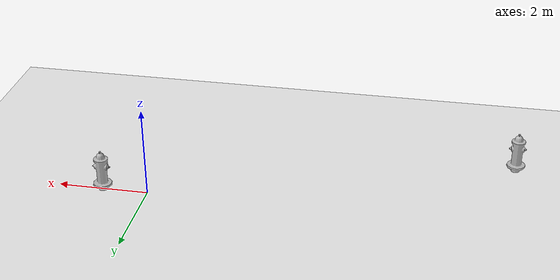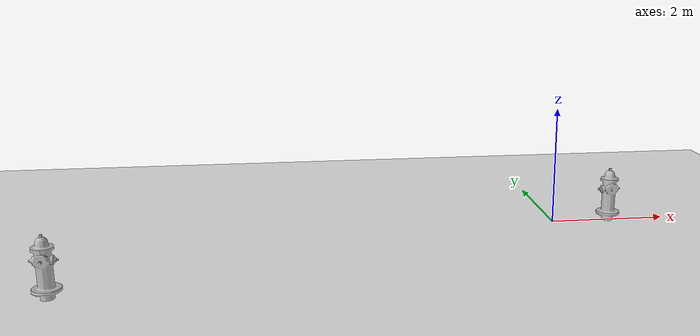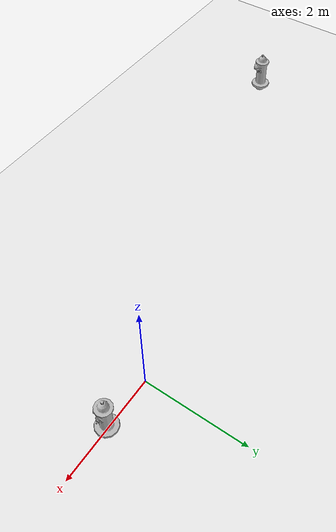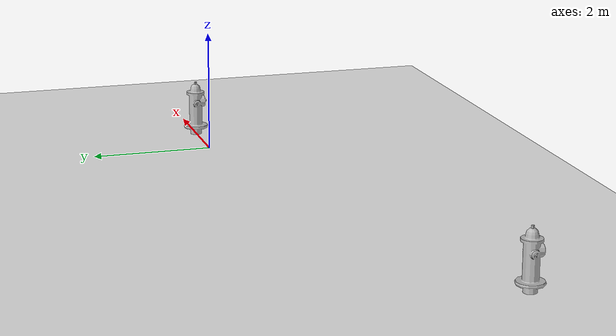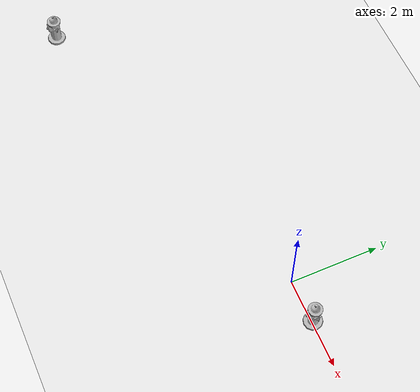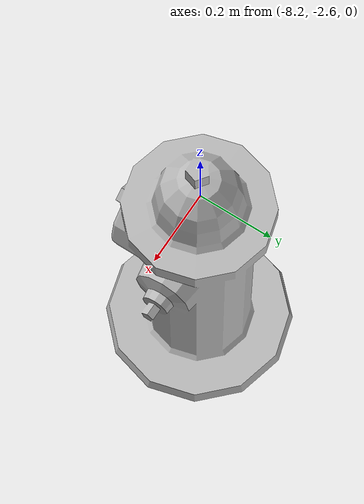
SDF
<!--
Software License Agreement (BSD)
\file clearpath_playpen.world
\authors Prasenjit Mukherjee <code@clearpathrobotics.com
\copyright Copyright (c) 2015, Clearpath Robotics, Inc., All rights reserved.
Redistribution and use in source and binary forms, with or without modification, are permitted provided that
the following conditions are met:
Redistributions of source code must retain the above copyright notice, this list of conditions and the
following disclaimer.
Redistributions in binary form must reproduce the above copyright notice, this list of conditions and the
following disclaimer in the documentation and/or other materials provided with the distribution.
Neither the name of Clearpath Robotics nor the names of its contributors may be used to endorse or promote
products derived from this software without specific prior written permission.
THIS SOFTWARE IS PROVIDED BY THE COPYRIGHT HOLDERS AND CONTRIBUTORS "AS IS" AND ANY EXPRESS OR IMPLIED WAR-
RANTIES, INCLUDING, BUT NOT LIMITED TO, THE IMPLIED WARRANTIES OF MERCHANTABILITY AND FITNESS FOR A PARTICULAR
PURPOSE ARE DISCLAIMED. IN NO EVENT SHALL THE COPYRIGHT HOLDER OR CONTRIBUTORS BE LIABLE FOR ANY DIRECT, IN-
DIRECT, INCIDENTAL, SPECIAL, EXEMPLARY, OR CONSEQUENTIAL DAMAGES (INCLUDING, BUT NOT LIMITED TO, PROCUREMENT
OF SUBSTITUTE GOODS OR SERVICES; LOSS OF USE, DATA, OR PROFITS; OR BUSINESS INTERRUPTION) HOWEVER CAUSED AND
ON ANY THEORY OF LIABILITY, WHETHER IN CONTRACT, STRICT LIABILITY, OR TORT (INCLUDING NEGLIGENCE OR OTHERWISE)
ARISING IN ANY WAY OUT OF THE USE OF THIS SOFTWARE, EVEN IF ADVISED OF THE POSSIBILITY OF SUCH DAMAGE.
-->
<sdf version="1.4">
 <world name="default">
  <light name="sun" type="directional">
   <pose>0 0 10 0 -0 0</pose>
   <diffuse>0.8 0.8 0.8 1</diffuse>
   <specular>0.2 0.2 0.2 1</specular>
   <attenuation>
    <range>1000</range>
    <constant>0.9</constant>
    <linear>0.01</linear>
    <quadratic>0.001</quadratic>
   </attenuation>
   <direction>-0.5 0.1 -0.9</direction>
  </light>
  <model name="ground_plane">
   <static>1</static>
   <link name="link">
    <collision name="collision">
     <geometry><plane><normal>0 0 1</normal><size>100 100</size></plane></geometry>
     <surface><friction><ode><mu>100</mu><mu2>50</mu2></ode></friction></surface>
    </collision>
    <visual name="visual">
     <cast_shadows>0</cast_shadows>
     <geometry><plane><normal>0 0 1</normal><size>100 100</size></plane></geometry>
     <material>
      <script><uri>file://media/materials/scripts/gazebo.material</uri><name>Gazebo/White</name></script>
     </material>
    </visual>
    <velocity_decay><linear>0</linear><angular>0</angular></velocity_decay>
   </link>
  </model>
  <physics type="ode">
   <max_step_size>0.01</max_step_size>
   <real_time_factor>1</real_time_factor>
   <real_time_update_rate>100</real_time_update_rate>
   <gravity>0 0 -9.8</gravity>
  </physics>
  <scene><ambient>0.4 0.4 0.4 1</ambient><background>0.7 0.7 0.7 1</background><shadows>1</shadows></scene>
  <model name="fire_hydrant_0">
   <static>1</static>
   <link name="link">
    <collision name="collision">
     <geometry><mesh><uri>model://fire_hydrant/meshes/fire_hydrant.dae</uri></mesh></geometry>
    </collision>
    <visual name="visual">
     <geometry><mesh><uri>model://fire_hydrant/meshes/fire_hydrant.dae</uri></mesh></geometry>
    </visual>
    <velocity_decay><linear>0</linear><angular>0</angular></velocity_decay>
   </link>
   <pose>1.0 0.0 0 0 -0 0</pose>
  </model>
  <model name="fire_hydrant_1">
   <static>1</static>
   <link name="link">
    <collision name="collision">
     <geometry><mesh><uri>model://fire_hydrant/meshes/fire_hydrant.dae</uri></mesh></geometry>
    </collision>
    <visual name="visual">
     <geometry><mesh><uri>model://fire_hydrant/meshes/fire_hydrant.dae</uri></mesh></geometry>
    </visual>
    <velocity_decay><linear>0</linear><angular>0</angular></velocity_decay>
   </link>
   <pose>-7.90686 -2.41363 0 0 -0 0</pose>
  </model>
 </world>
</sdf>
